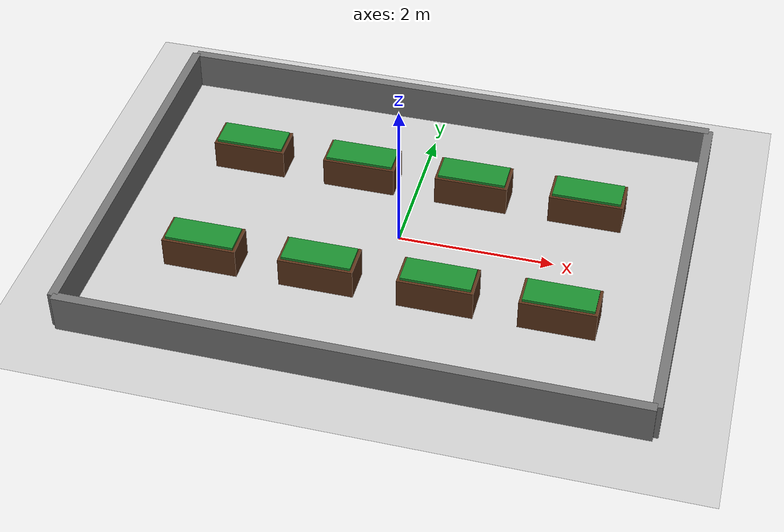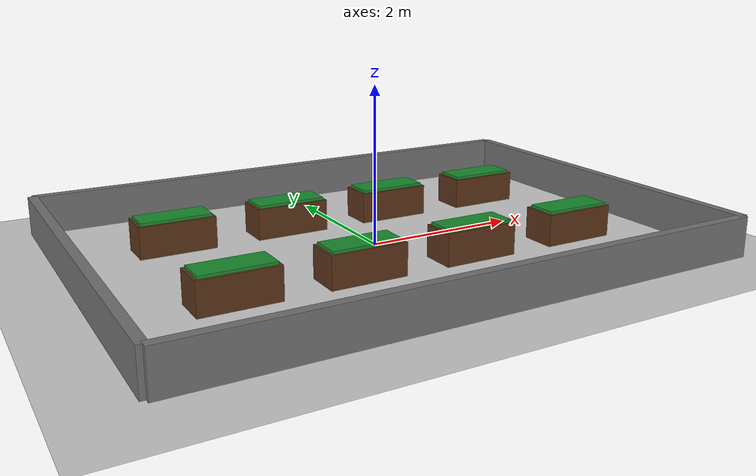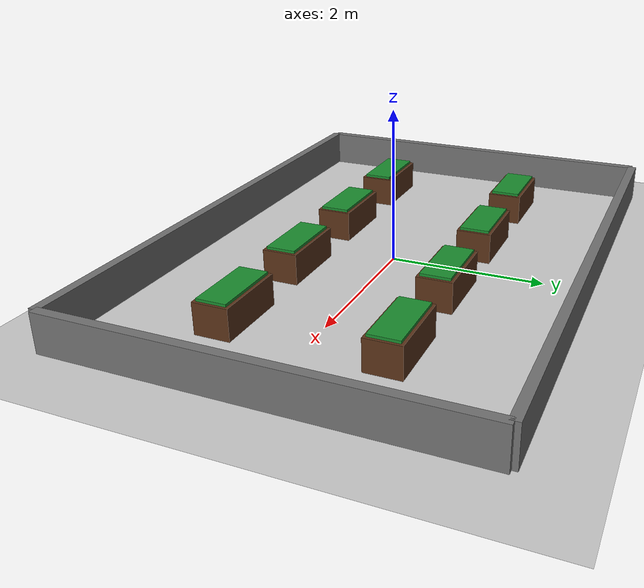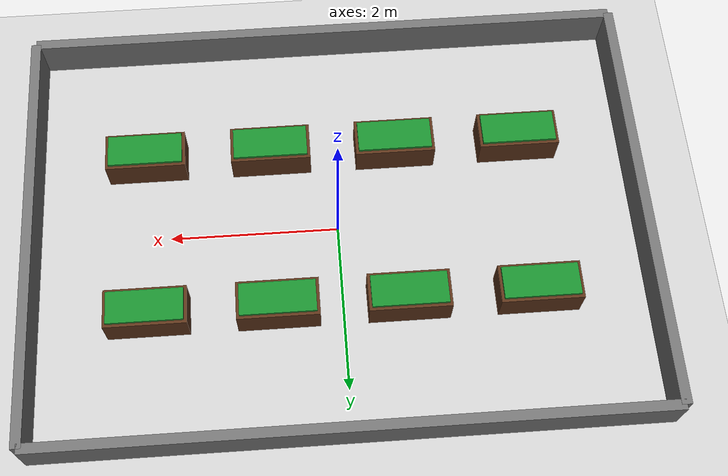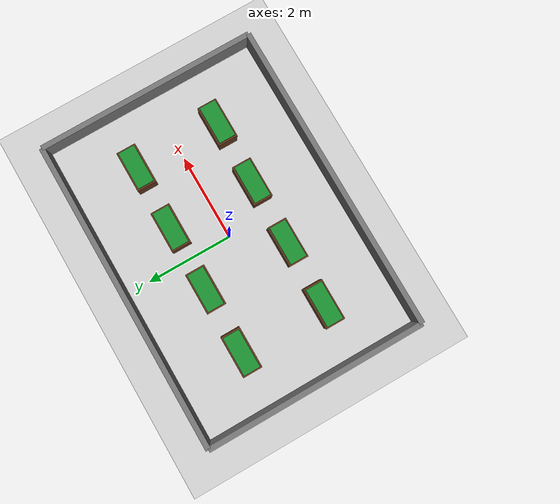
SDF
<?xml version="1.0"?>
<sdf version="1.7">
  <world name="greenhouse_8_beds">
    <include>
      <uri>model://ground_plane</uri>
    </include>
    <include>
      <uri>model://sun</uri>
    </include>

    <gravity>0 0 -9.8</gravity>
    <physics type="ode">
      <max_step_size>0.01</max_step_size>
      <real_time_factor>1</real_time_factor>
      <real_time_update_rate>100</real_time_update_rate>
    </physics>

    <scene>
      <ambient>0.82 0.82 0.78 1</ambient>
      <background>0.72 0.86 0.92 1</background>
      <shadows>false</shadows>
    </scene>

    <!-- Outer greenhouse boundary. -->
    <model name="north_wall">
      <static>true</static>
      <pose>0 2.55 0.25 0 0 0</pose>
      <link name="link">
        <collision name="collision">
          <geometry><box><size>7.2 0.12 0.5</size></box></geometry>
        </collision>
        <visual name="visual">
          <geometry><box><size>7.2 0.12 0.5</size></box></geometry>
          <material>
            <ambient>0.45 0.45 0.45 1</ambient>
            <diffuse>0.45 0.45 0.45 1</diffuse>
          </material>
        </visual>
      </link>
    </model>

    <model name="south_wall">
      <static>true</static>
      <pose>0 -2.55 0.25 0 0 0</pose>
      <link name="link">
        <collision name="collision">
          <geometry><box><size>7.2 0.12 0.5</size></box></geometry>
        </collision>
        <visual name="visual">
          <geometry><box><size>7.2 0.12 0.5</size></box></geometry>
          <material>
            <ambient>0.45 0.45 0.45 1</ambient>
            <diffuse>0.45 0.45 0.45 1</diffuse>
          </material>
        </visual>
      </link>
    </model>

    <model name="west_wall">
      <static>true</static>
      <pose>-3.6 0 0.25 0 0 0</pose>
      <link name="link">
        <collision name="collision">
          <geometry><box><size>0.12 5.1 0.5</size></box></geometry>
        </collision>
        <visual name="visual">
          <geometry><box><size>0.12 5.1 0.5</size></box></geometry>
          <material>
            <ambient>0.45 0.45 0.45 1</ambient>
            <diffuse>0.45 0.45 0.45 1</diffuse>
          </material>
        </visual>
      </link>
    </model>

    <model name="east_wall">
      <static>true</static>
      <pose>3.6 0 0.25 0 0 0</pose>
      <link name="link">
        <collision name="collision">
          <geometry><box><size>0.12 5.1 0.5</size></box></geometry>
        </collision>
        <visual name="visual">
          <geometry><box><size>0.12 5.1 0.5</size></box></geometry>
          <material>
            <ambient>0.45 0.45 0.45 1</ambient>
            <diffuse>0.45 0.45 0.45 1</diffuse>
          </material>
        </visual>
      </link>
    </model>

    <!-- Eight straight flower beds in a 4 by 2 formation.
         All beds are axis-aligned rectangles in top view. -->
    <model name="flower_bed_1">
      <static>true</static>
      <pose>-2.25 1.0 0.225 0 0 0</pose>
      <link name="link">
        <collision name="collision"><geometry><box><size>0.95 0.45 0.45</size></box></geometry></collision>
        <visual name="soil"><geometry><box><size>0.95 0.45 0.40</size></box></geometry><material><ambient>0.36 0.20 0.10 1</ambient><diffuse>0.36 0.20 0.10 1</diffuse></material></visual>
        <visual name="plants"><pose>0 0 0.215 0 0 0</pose><geometry><box><size>0.88 0.38 0.04</size></box></geometry><material><ambient>0.10 0.45 0.16 1</ambient><diffuse>0.10 0.55 0.18 1</diffuse></material></visual>
      </link>
    </model>

    <model name="flower_bed_2">
      <static>true</static>
      <pose>-0.75 1.0 0.225 0 0 0</pose>
      <link name="link">
        <collision name="collision"><geometry><box><size>0.95 0.45 0.45</size></box></geometry></collision>
        <visual name="soil"><geometry><box><size>0.95 0.45 0.40</size></box></geometry><material><ambient>0.36 0.20 0.10 1</ambient><diffuse>0.36 0.20 0.10 1</diffuse></material></visual>
        <visual name="plants"><pose>0 0 0.215 0 0 0</pose><geometry><box><size>0.88 0.38 0.04</size></box></geometry><material><ambient>0.10 0.45 0.16 1</ambient><diffuse>0.10 0.55 0.18 1</diffuse></material></visual>
      </link>
    </model>

    <model name="flower_bed_3">
      <static>true</static>
      <pose>0.75 1.0 0.225 0 0 0</pose>
      <link name="link">
        <collision name="collision"><geometry><box><size>0.95 0.45 0.45</size></box></geometry></collision>
        <visual name="soil"><geometry><box><size>0.95 0.45 0.40</size></box></geometry><material><ambient>0.36 0.20 0.10 1</ambient><diffuse>0.36 0.20 0.10 1</diffuse></material></visual>
        <visual name="plants"><pose>0 0 0.215 0 0 0</pose><geometry><box><size>0.88 0.38 0.04</size></box></geometry><material><ambient>0.10 0.45 0.16 1</ambient><diffuse>0.10 0.55 0.18 1</diffuse></material></visual>
      </link>
    </model>

    <model name="flower_bed_4">
      <static>true</static>
      <pose>2.25 1.0 0.225 0 0 0</pose>
      <link name="link">
        <collision name="collision"><geometry><box><size>0.95 0.45 0.45</size></box></geometry></collision>
        <visual name="soil"><geometry><box><size>0.95 0.45 0.40</size></box></geometry><material><ambient>0.36 0.20 0.10 1</ambient><diffuse>0.36 0.20 0.10 1</diffuse></material></visual>
        <visual name="plants"><pose>0 0 0.215 0 0 0</pose><geometry><box><size>0.88 0.38 0.04</size></box></geometry><material><ambient>0.10 0.45 0.16 1</ambient><diffuse>0.10 0.55 0.18 1</diffuse></material></visual>
      </link>
    </model>

    <model name="flower_bed_5">
      <static>true</static>
      <pose>-2.25 -1.0 0.225 0 0 0</pose>
      <link name="link">
        <collision name="collision"><geometry><box><size>0.95 0.45 0.45</size></box></geometry></collision>
        <visual name="soil"><geometry><box><size>0.95 0.45 0.40</size></box></geometry><material><ambient>0.36 0.20 0.10 1</ambient><diffuse>0.36 0.20 0.10 1</diffuse></material></visual>
        <visual name="plants"><pose>0 0 0.215 0 0 0</pose><geometry><box><size>0.88 0.38 0.04</size></box></geometry><material><ambient>0.10 0.45 0.16 1</ambient><diffuse>0.10 0.55 0.18 1</diffuse></material></visual>
      </link>
    </model>

    <model name="flower_bed_6">
      <static>true</static>
      <pose>-0.75 -1.0 0.225 0 0 0</pose>
      <link name="link">
        <collision name="collision"><geometry><box><size>0.95 0.45 0.45</size></box></geometry></collision>
        <visual name="soil"><geometry><box><size>0.95 0.45 0.40</size></box></geometry><material><ambient>0.36 0.20 0.10 1</ambient><diffuse>0.36 0.20 0.10 1</diffuse></material></visual>
        <visual name="plants"><pose>0 0 0.215 0 0 0</pose><geometry><box><size>0.88 0.38 0.04</size></box></geometry><material><ambient>0.10 0.45 0.16 1</ambient><diffuse>0.10 0.55 0.18 1</diffuse></material></visual>
      </link>
    </model>

    <model name="flower_bed_7">
      <static>true</static>
      <pose>0.75 -1.0 0.225 0 0 0</pose>
      <link name="link">
        <collision name="collision"><geometry><box><size>0.95 0.45 0.45</size></box></geometry></collision>
        <visual name="soil"><geometry><box><size>0.95 0.45 0.40</size></box></geometry><material><ambient>0.36 0.20 0.10 1</ambient><diffuse>0.36 0.20 0.10 1</diffuse></material></visual>
        <visual name="plants"><pose>0 0 0.215 0 0 0</pose><geometry><box><size>0.88 0.38 0.04</size></box></geometry><material><ambient>0.10 0.45 0.16 1</ambient><diffuse>0.10 0.55 0.18 1</diffuse></material></visual>
      </link>
    </model>

    <model name="flower_bed_8">
      <static>true</static>
      <pose>2.25 -1.0 0.225 0 0 0</pose>
      <link name="link">
        <collision name="collision"><geometry><box><size>0.95 0.45 0.45</size></box></geometry></collision>
        <visual name="soil"><geometry><box><size>0.95 0.45 0.40</size></box></geometry><material><ambient>0.36 0.20 0.10 1</ambient><diffuse>0.36 0.20 0.10 1</diffuse></material></visual>
        <visual name="plants"><pose>0 0 0.215 0 0 0</pose><geometry><box><size>0.88 0.38 0.04</size></box></geometry><material><ambient>0.10 0.45 0.16 1</ambient><diffuse>0.10 0.55 0.18 1</diffuse></material></visual>
      </link>
    </model>

    <gui fullscreen="0">
      <camera name="user_camera">
        <pose>0 0 8.0 0 1.5708 0</pose>
        <view_controller>orbit</view_controller>
        <projection_type>perspective</projection_type>
      </camera>
    </gui>
  </world>
</sdf>
